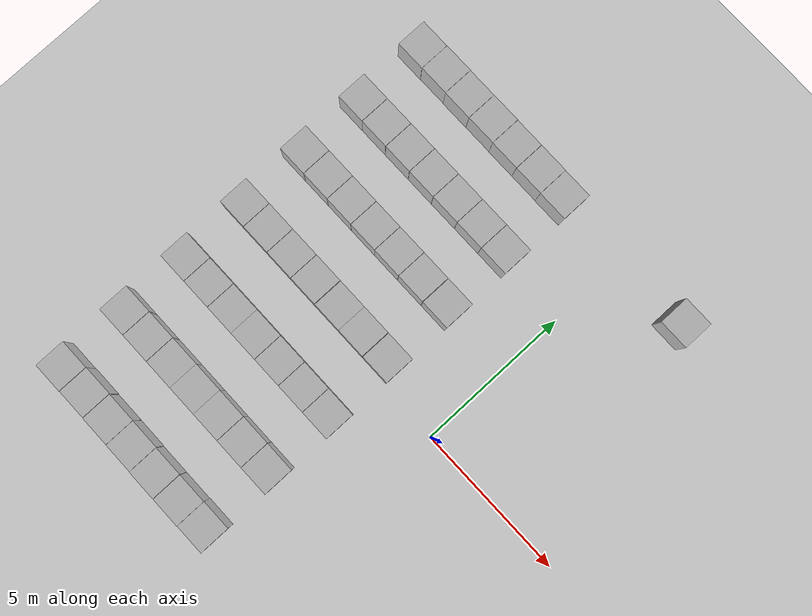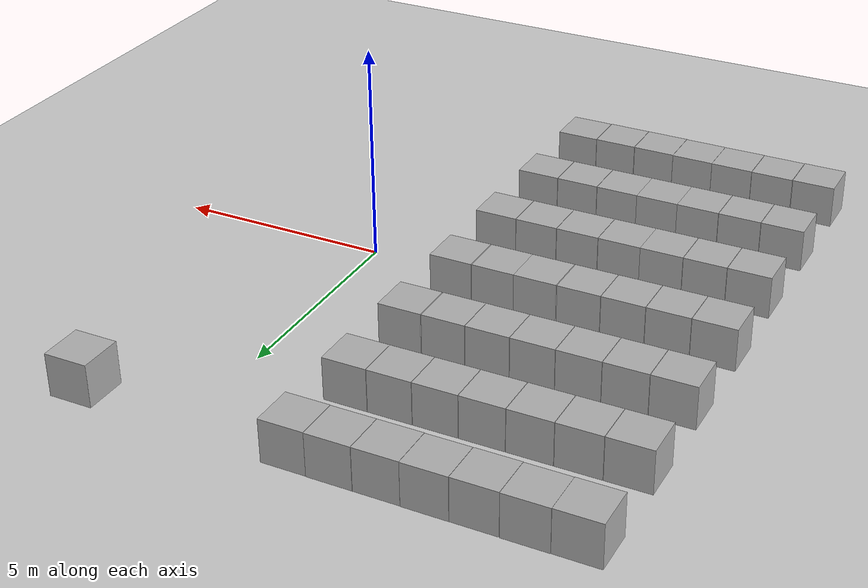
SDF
<sdf version="1.10">
 <world name="empty">
  <model name="ground_plane">
   <static>true</static>
   <link name="link">
    <collision name="collision">
     <geometry><plane><normal>0 0 1</normal><size>100 100</size></plane></geometry>
    </collision>
    <visual name="visual">
     <geometry><plane><normal>0 0 1</normal><size>100 100</size></plane></geometry>
     <material>
      <ambient>0.800000012 0.800000012 0.800000012 1</ambient>
      <diffuse>0.800000012 0.800000012 0.800000012 1</diffuse>
      <specular>0.800000012 0.800000012 0.800000012 1</specular>
     </material>
    </visual>
    <inertial>
     <mass>1</mass>
     <inertia><ixx>1</ixx><ixy>0</ixy><ixz>0</ixz><iyy>1</iyy><iyz>0</iyz><izz>1</izz></inertia>
    </inertial>
   </link>
  </model>
  <model name="box_34">
   <pose>2.4910600000000001 7.50007 0.49999999990199806 -2.5397393684422978e-21 1.8424908735395696e-21 -3.4618579833306759e-22</pose>
   <link name="box_link">
    <inertial>
     <inertia><ixx>0.16666</ixx><ixy>0</ixy><ixz>0</ixz><iyy>0.16666</iyy><iyz>0</iyz><izz>0.16666</izz></inertia>
     <mass>1</mass>
    </inertial>
    <collision name="box_collision"><geometry><box><size>1 1 1</size></box></geometry></collision>
    <visual name="box_visual">
     <geometry><box><size>1 1 1</size></box></geometry>
     <material>
      <ambient>0.300000012 0.300000012 0.300000012 1</ambient>
      <diffuse>0.699999988 0.699999988 0.699999988 1</diffuse>
      <specular>1 1 1 1</specular>
     </material>
    </visual>
   </link>
   <static>false</static>
  </model>
  <model name="box_41">
   <pose>-2.4900000000000002 -1.71 0.5 1.6937504338995532e-43 0 0</pose>
   <link name="box_link">
    <inertial>
     <inertia><ixx>0.16666</ixx><ixy>0</ixy><ixz>0</ixz><iyy>0.16666</iyy><iyz>0</iyz><izz>0.16666</izz></inertia>
     <mass>1</mass>
    </inertial>
    <collision name="box_collision"><geometry><box><size>1 1 1</size></box></geometry></collision>
    <visual name="box_visual">
     <geometry><box><size>1 1 1</size></box></geometry>
     <material>
      <ambient>0.300000012 0.300000012 0.300000012 1</ambient>
      <diffuse>0.699999988 0.699999988 0.699999988 1</diffuse>
      <specular>1 1 1 1</specular>
     </material>
    </visual>
   </link>
   <static>false</static>
  </model>
  <model name="box_42">
   <pose>-3.5 -1.71 0.5 1.6937504338995532e-43 0 0</pose>
   <link name="box_link">
    <inertial>
     <inertia><ixx>0.16666</ixx><ixy>0</ixy><ixz>0</ixz><iyy>0.16666</iyy><iyz>0</iyz><izz>0.16666</izz></inertia>
     <mass>1</mass>
    </inertial>
    <collision name="box_collision"><geometry><box><size>1 1 1</size></box></geometry></collision>
    <visual name="box_visual">
     <geometry><box><size>1 1 1</size></box></geometry>
     <material>
      <ambient>0.300000012 0.300000012 0.300000012 1</ambient>
      <diffuse>0.699999988 0.699999988 0.699999988 1</diffuse>
      <specular>1 1 1 1</specular>
     </material>
    </visual>
   </link>
   <static>false</static>
  </model>
  <model name="box_43">
   <pose>-4.5099999999999998 -1.71 0.5 1.6937504338995532e-43 0 0</pose>
   <link name="box_link">
    <inertial>
     <inertia><ixx>0.16666</ixx><ixy>0</ixy><ixz>0</ixz><iyy>0.16666</iyy><iyz>0</iyz><izz>0.16666</izz></inertia>
     <mass>1</mass>
    </inertial>
    <collision name="box_collision"><geometry><box><size>1 1 1</size></box></geometry></collision>
    <visual name="box_visual">
     <geometry><box><size>1 1 1</size></box></geometry>
     <material>
      <ambient>0.300000012 0.300000012 0.300000012 1</ambient>
      <diffuse>0.699999988 0.699999988 0.699999988 1</diffuse>
      <specular>1 1 1 1</specular>
     </material>
    </visual>
   </link>
   <static>false</static>
  </model>
  <model name="box_44">
   <pose>-5.5199999999999996 -1.71 0.5 1.6937504338995532e-43 0 0</pose>
   <link name="box_link">
    <inertial>
     <inertia><ixx>0.16666</ixx><ixy>0</ixy><ixz>0</ixz><iyy>0.16666</iyy><iyz>0</iyz><izz>0.16666</izz></inertia>
     <mass>1</mass>
    </inertial>
    <collision name="box_collision"><geometry><box><size>1 1 1</size></box></geometry></collision>
    <visual name="box_visual">
     <geometry><box><size>1 1 1</size></box></geometry>
     <material>
      <ambient>0.300000012 0.300000012 0.300000012 1</ambient>
      <diffuse>0.699999988 0.699999988 0.699999988 1</diffuse>
      <specular>1 1 1 1</specular>
     </material>
    </visual>
   </link>
   <static>false</static>
  </model>
  <model name="box_45">
   <pose>-6.5199999999999996 -1.71 0.5 1.6937504338995532e-43 0 0</pose>
   <link name="box_link">
    <inertial>
     <inertia><ixx>0.16666</ixx><ixy>0</ixy><ixz>0</ixz><iyy>0.16666</iyy><iyz>0</iyz><izz>0.16666</izz></inertia>
     <mass>1</mass>
    </inertial>
    <collision name="box_collision"><geometry><box><size>1 1 1</size></box></geometry></collision>
    <visual name="box_visual">
     <geometry><box><size>1 1 1</size></box></geometry>
     <material>
      <ambient>0.300000012 0.300000012 0.300000012 1</ambient>
      <diffuse>0.699999988 0.699999988 0.699999988 1</diffuse>
      <specular>1 1 1 1</specular>
     </material>
    </visual>
   </link>
   <static>false</static>
  </model>
  <model name="box_46">
   <pose>-7.5300000000000002 -1.71 0.5 1.6937504338995532e-43 0 0</pose>
   <link name="box_link">
    <inertial>
     <inertia><ixx>0.16666</ixx><ixy>0</ixy><ixz>0</ixz><iyy>0.16666</iyy><iyz>0</iyz><izz>0.16666</izz></inertia>
     <mass>1</mass>
    </inertial>
    <collision name="box_collision"><geometry><box><size>1 1 1</size></box></geometry></collision>
    <visual name="box_visual">
     <geometry><box><size>1 1 1</size></box></geometry>
     <material>
      <ambient>0.300000012 0.300000012 0.300000012 1</ambient>
      <diffuse>0.699999988 0.699999988 0.699999988 1</diffuse>
      <specular>1 1 1 1</specular>
     </material>
    </visual>
   </link>
   <static>false</static>
  </model>
  <model name="box_47">
   <pose>-8.5399999999999991 -1.71 0.5 1.6937504338995532e-43 0 0</pose>
   <link name="box_link">
    <inertial>
     <inertia><ixx>0.16666</ixx><ixy>0</ixy><ixz>0</ixz><iyy>0.16666</iyy><iyz>0</iyz><izz>0.16666</izz></inertia>
     <mass>1</mass>
    </inertial>
    <collision name="box_collision"><geometry><box><size>1 1 1</size></box></geometry></collision>
    <visual name="box_visual">
     <geometry><box><size>1 1 1</size></box></geometry>
     <material>
      <ambient>0.300000012 0.300000012 0.300000012 1</ambient>
      <diffuse>0.699999988 0.699999988 0.699999988 1</diffuse>
      <specular>1 1 1 1</specular>
     </material>
    </visual>
   </link>
   <static>false</static>
  </model>
  <model name="box_48">
   <pose>-2.5 0.58999999999999986 0.5 1.6937504338995532e-43 0 0</pose>
   <link name="box_link">
    <inertial>
     <inertia><ixx>0.16666</ixx><ixy>0</ixy><ixz>0</ixz><iyy>0.16666</iyy><iyz>0</iyz><izz>0.16666</izz></inertia>
     <mass>1</mass>
    </inertial>
    <collision name="box_collision"><geometry><box><size>1 1 1</size></box></geometry></collision>
    <visual name="box_visual">
     <geometry><box><size>1 1 1</size></box></geometry>
     <material>
      <ambient>0.300000012 0.300000012 0.300000012 1</ambient>
      <diffuse>0.699999988 0.699999988 0.699999988 1</diffuse>
      <specular>1 1 1 1</specular>
     </material>
    </visual>
   </link>
   <static>false</static>
  </model>
  <model name="box_49">
   <pose>-3.52 0.58999999999999986 0.5 2.2328191725413117e-44 0 0</pose>
   <link name="box_link">
    <inertial>
     <inertia><ixx>0.16666</ixx><ixy>0</ixy><ixz>0</ixz><iyy>0.16666</iyy><iyz>0</iyz><izz>0.16666</izz></inertia>
     <mass>1</mass>
    </inertial>
    <collision name="box_collision"><geometry><box><size>1 1 1</size></box></geometry></collision>
    <visual name="box_visual">
     <geometry><box><size>1 1 1</size></box></geometry>
     <material>
      <ambient>0.300000012 0.300000012 0.300000012 1</ambient>
      <diffuse>0.699999988 0.699999988 0.699999988 1</diffuse>
      <specular>1 1 1 1</specular>
     </material>
    </visual>
   </link>
   <static>false</static>
  </model>
  <model name="box_50">
   <pose>-4.5199999999999996 0.58999999999999986 0.5 1.6937504338995532e-43 0 0</pose>
   <link name="box_link">
    <inertial>
     <inertia><ixx>0.16666</ixx><ixy>0</ixy><ixz>0</ixz><iyy>0.16666</iyy><iyz>0</iyz><izz>0.16666</izz></inertia>
     <mass>1</mass>
    </inertial>
    <collision name="box_collision"><geometry><box><size>1 1 1</size></box></geometry></collision>
    <visual name="box_visual">
     <geometry><box><size>1 1 1</size></box></geometry>
     <material>
      <ambient>0.300000012 0.300000012 0.300000012 1</ambient>
      <diffuse>0.699999988 0.699999988 0.699999988 1</diffuse>
      <specular>1 1 1 1</specular>
     </material>
    </visual>
   </link>
   <static>false</static>
  </model>
  <model name="box_51">
   <pose>-5.54 0.58999999999999986 0.5 1.6937504338995532e-43 0 0</pose>
   <link name="box_link">
    <inertial>
     <inertia><ixx>0.16666</ixx><ixy>0</ixy><ixz>0</ixz><iyy>0.16666</iyy><iyz>0</iyz><izz>0.16666</izz></inertia>
     <mass>1</mass>
    </inertial>
    <collision name="box_collision"><geometry><box><size>1 1 1</size></box></geometry></collision>
    <visual name="box_visual">
     <geometry><box><size>1 1 1</size></box></geometry>
     <material>
      <ambient>0.300000012 0.300000012 0.300000012 1</ambient>
      <diffuse>0.699999988 0.699999988 0.699999988 1</diffuse>
      <specular>1 1 1 1</specular>
     </material>
    </visual>
   </link>
   <static>false</static>
  </model>
  <model name="box_52">
   <pose>-6.5499999999999998 0.58999999999999986 0.5 1.6937504338995532e-43 0 0</pose>
   <link name="box_link">
    <inertial>
     <inertia><ixx>0.16666</ixx><ixy>0</ixy><ixz>0</ixz><iyy>0.16666</iyy><iyz>0</iyz><izz>0.16666</izz></inertia>
     <mass>1</mass>
    </inertial>
    <collision name="box_collision"><geometry><box><size>1 1 1</size></box></geometry></collision>
    <visual name="box_visual">
     <geometry><box><size>1 1 1</size></box></geometry>
     <material>
      <ambient>0.300000012 0.300000012 0.300000012 1</ambient>
      <diffuse>0.699999988 0.699999988 0.699999988 1</diffuse>
      <specular>1 1 1 1</specular>
     </material>
    </visual>
   </link>
   <static>false</static>
  </model>
  <model name="box_53">
   <pose>-7.5599999999999996 0.58999999999999986 0.5 1.6937504338995532e-43 0 0</pose>
   <link name="box_link">
    <inertial>
     <inertia><ixx>0.16666</ixx><ixy>0</ixy><ixz>0</ixz><iyy>0.16666</iyy><iyz>0</iyz><izz>0.16666</izz></inertia>
     <mass>1</mass>
    </inertial>
    <collision name="box_collision"><geometry><box><size>1 1 1</size></box></geometry></collision>
    <visual name="box_visual">
     <geometry><box><size>1 1 1</size></box></geometry>
     <material>
      <ambient>0.300000012 0.300000012 0.300000012 1</ambient>
      <diffuse>0.699999988 0.699999988 0.699999988 1</diffuse>
      <specular>1 1 1 1</specular>
     </material>
    </visual>
   </link>
   <static>false</static>
  </model>
  <model name="box_54">
   <pose>-8.5700000000000003 0.59000000000000008 0.5 1.6937504338995532e-43 0 0</pose>
   <link name="box_link">
    <inertial>
     <inertia><ixx>0.16666</ixx><ixy>0</ixy><ixz>0</ixz><iyy>0.16666</iyy><iyz>0</iyz><izz>0.16666</izz></inertia>
     <mass>1</mass>
    </inertial>
    <collision name="box_collision"><geometry><box><size>1 1 1</size></box></geometry></collision>
    <visual name="box_visual">
     <geometry><box><size>1 1 1</size></box></geometry>
     <material>
      <ambient>0.300000012 0.300000012 0.300000012 1</ambient>
      <diffuse>0.699999988 0.699999988 0.699999988 1</diffuse>
      <specular>1 1 1 1</specular>
     </material>
    </visual>
   </link>
   <static>false</static>
  </model>
  <model name="box_55">
   <pose>-2.5099999999999998 -4 0.5 0 0 0</pose>
   <link name="box_link">
    <inertial>
     <inertia><ixx>0.16666</ixx><ixy>0</ixy><ixz>0</ixz><iyy>0.16666</iyy><iyz>0</iyz><izz>0.16666</izz></inertia>
     <mass>1</mass>
    </inertial>
    <collision name="box_collision"><geometry><box><size>1 1 1</size></box></geometry></collision>
    <visual name="box_visual">
     <geometry><box><size>1 1 1</size></box></geometry>
     <material>
      <ambient>0.300000012 0.300000012 0.300000012 1</ambient>
      <diffuse>0.699999988 0.699999988 0.699999988 1</diffuse>
      <specular>1 1 1 1</specular>
     </material>
    </visual>
   </link>
   <static>false</static>
  </model>
  <model name="box_56">
   <pose>-3.52 -4 0.5 -2.432589078950135e-43 0 0</pose>
   <link name="box_link">
    <inertial>
     <inertia><ixx>0.16666</ixx><ixy>0</ixy><ixz>0</ixz><iyy>0.16666</iyy><iyz>0</iyz><izz>0.16666</izz></inertia>
     <mass>1</mass>
    </inertial>
    <collision name="box_collision"><geometry><box><size>1 1 1</size></box></geometry></collision>
    <visual name="box_visual">
     <geometry><box><size>1 1 1</size></box></geometry>
     <material>
      <ambient>0.300000012 0.300000012 0.300000012 1</ambient>
      <diffuse>0.699999988 0.699999988 0.699999988 1</diffuse>
      <specular>1 1 1 1</specular>
     </material>
    </visual>
   </link>
   <static>false</static>
  </model>
  <model name="box_57">
   <pose>-4.5300000000000002 -4 0.5 1.6937504338995532e-43 0 0</pose>
   <link name="box_link">
    <inertial>
     <inertia><ixx>0.16666</ixx><ixy>0</ixy><ixz>0</ixz><iyy>0.16666</iyy><iyz>0</iyz><izz>0.16666</izz></inertia>
     <mass>1</mass>
    </inertial>
    <collision name="box_collision"><geometry><box><size>1 1 1</size></box></geometry></collision>
    <visual name="box_visual">
     <geometry><box><size>1 1 1</size></box></geometry>
     <material>
      <ambient>0.300000012 0.300000012 0.300000012 1</ambient>
      <diffuse>0.699999988 0.699999988 0.699999988 1</diffuse>
      <specular>1 1 1 1</specular>
     </material>
    </visual>
   </link>
   <static>false</static>
  </model>
  <model name="box_58">
   <pose>-5.5300000000000002 -4 0.5 1.6937504338995532e-43 0 0</pose>
   <link name="box_link">
    <inertial>
     <inertia><ixx>0.16666</ixx><ixy>0</ixy><ixz>0</ixz><iyy>0.16666</iyy><iyz>0</iyz><izz>0.16666</izz></inertia>
     <mass>1</mass>
    </inertial>
    <collision name="box_collision"><geometry><box><size>1 1 1</size></box></geometry></collision>
    <visual name="box_visual">
     <geometry><box><size>1 1 1</size></box></geometry>
     <material>
      <ambient>0.300000012 0.300000012 0.300000012 1</ambient>
      <diffuse>0.699999988 0.699999988 0.699999988 1</diffuse>
      <specular>1 1 1 1</specular>
     </material>
    </visual>
   </link>
   <static>false</static>
  </model>
  <model name="box_59">
   <pose>-6.5300000000000002 -4 0.5 5.5058610233241208e-44 0 0</pose>
   <link name="box_link">
    <inertial>
     <inertia><ixx>0.16666</ixx><ixy>0</ixy><ixz>0</ixz><iyy>0.16666</iyy><iyz>0</iyz><izz>0.16666</izz></inertia>
     <mass>1</mass>
    </inertial>
    <collision name="box_collision"><geometry><box><size>1 1 1</size></box></geometry></collision>
    <visual name="box_visual">
     <geometry><box><size>1 1 1</size></box></geometry>
     <material>
      <ambient>0.300000012 0.300000012 0.300000012 1</ambient>
      <diffuse>0.699999988 0.699999988 0.699999988 1</diffuse>
      <specular>1 1 1 1</specular>
     </material>
    </visual>
   </link>
   <static>false</static>
  </model>
  <model name="box_60">
   <pose>-7.54 -4 0.5 5.5058610233241208e-44 0 0</pose>
   <link name="box_link">
    <inertial>
     <inertia><ixx>0.16666</ixx><ixy>0</ixy><ixz>0</ixz><iyy>0.16666</iyy><iyz>0</iyz><izz>0.16666</izz></inertia>
     <mass>1</mass>
    </inertial>
    <collision name="box_collision"><geometry><box><size>1 1 1</size></box></geometry></collision>
    <visual name="box_visual">
     <geometry><box><size>1 1 1</size></box></geometry>
     <material>
      <ambient>0.300000012 0.300000012 0.300000012 1</ambient>
      <diffuse>0.699999988 0.699999988 0.699999988 1</diffuse>
      <specular>1 1 1 1</specular>
     </material>
    </visual>
   </link>
   <static>false</static>
  </model>
  <model name="box_61">
   <pose>-8.5500000000000007 -4 0.5 5.5058610233241208e-44 0 0</pose>
   <link name="box_link">
    <inertial>
     <inertia><ixx>0.16666</ixx><ixy>0</ixy><ixz>0</ixz><iyy>0.16666</iyy><iyz>0</iyz><izz>0.16666</izz></inertia>
     <mass>1</mass>
    </inertial>
    <collision name="box_collision"><geometry><box><size>1 1 1</size></box></geometry></collision>
    <visual name="box_visual">
     <geometry><box><size>1 1 1</size></box></geometry>
     <material>
      <ambient>0.300000012 0.300000012 0.300000012 1</ambient>
      <diffuse>0.699999988 0.699999988 0.699999988 1</diffuse>
      <specular>1 1 1 1</specular>
     </material>
    </visual>
   </link>
   <static>false</static>
  </model>
  <model name="box_62">
   <pose>-2.4900000000000002 2.8999999999999999 0.5 1.6937504338995532e-43 0 0</pose>
   <link name="box_link">
    <inertial>
     <inertia><ixx>0.16666</ixx><ixy>0</ixy><ixz>0</ixz><iyy>0.16666</iyy><iyz>0</iyz><izz>0.16666</izz></inertia>
     <mass>1</mass>
    </inertial>
    <collision name="box_collision"><geometry><box><size>1 1 1</size></box></geometry></collision>
    <visual name="box_visual">
     <geometry><box><size>1 1 1</size></box></geometry>
     <material>
      <ambient>0.300000012 0.300000012 0.300000012 1</ambient>
      <diffuse>0.699999988 0.699999988 0.699999988 1</diffuse>
      <specular>1 1 1 1</specular>
     </material>
    </visual>
   </link>
   <static>false</static>
  </model>
  <model name="box_63">
   <pose>-3.5099999999999998 2.8999999999999999 0.5 -4.7911072141670372e-43 0 0</pose>
   <link name="box_link">
    <inertial>
     <inertia><ixx>0.16666</ixx><ixy>0</ixy><ixz>0</ixz><iyy>0.16666</iyy><iyz>0</iyz><izz>0.16666</izz></inertia>
     <mass>1</mass>
    </inertial>
    <collision name="box_collision"><geometry><box><size>1 1 1</size></box></geometry></collision>
    <visual name="box_visual">
     <geometry><box><size>1 1 1</size></box></geometry>
     <material>
      <ambient>0.300000012 0.300000012 0.300000012 1</ambient>
      <diffuse>0.699999988 0.699999988 0.699999988 1</diffuse>
      <specular>1 1 1 1</specular>
     </material>
    </visual>
   </link>
   <static>false</static>
  </model>
  <model name="box_64">
   <pose>-4.5199999999999996 2.8999999999999999 0.5 1.6937504338995532e-43 0 0</pose>
   <link name="box_link">
    <inertial>
     <inertia><ixx>0.16666</ixx><ixy>0</ixy><ixz>0</ixz><iyy>0.16666</iyy><iyz>0</iyz><izz>0.16666</izz></inertia>
     <mass>1</mass>
    </inertial>
    <collision name="box_collision"><geometry><box><size>1 1 1</size></box></geometry></collision>
    <visual name="box_visual">
     <geometry><box><size>1 1 1</size></box></geometry>
     <material>
      <ambient>0.300000012 0.300000012 0.300000012 1</ambient>
      <diffuse>0.699999988 0.699999988 0.699999988 1</diffuse>
      <specular>1 1 1 1</specular>
     </material>
    </visual>
   </link>
   <static>false</static>
  </model>
  <model name="box_65">
   <pose>-5.5300000000000002 2.8999999999999999 0.5 1.6937504338995532e-43 0 0</pose>
   <link name="box_link">
    <inertial>
     <inertia><ixx>0.16666</ixx><ixy>0</ixy><ixz>0</ixz><iyy>0.16666</iyy><iyz>0</iyz><izz>0.16666</izz></inertia>
     <mass>1</mass>
    </inertial>
    <collision name="box_collision"><geometry><box><size>1 1 1</size></box></geometry></collision>
    <visual name="box_visual">
     <geometry><box><size>1 1 1</size></box></geometry>
     <material>
      <ambient>0.300000012 0.300000012 0.300000012 1</ambient>
      <diffuse>0.699999988 0.699999988 0.699999988 1</diffuse>
      <specular>1 1 1 1</specular>
     </material>
    </visual>
   </link>
   <static>false</static>
  </model>
  <model name="box_66">
   <pose>-6.54 2.8999999999999999 0.5 -4.7911072141670372e-43 0 0</pose>
   <link name="box_link">
    <inertial>
     <inertia><ixx>0.16666</ixx><ixy>0</ixy><ixz>0</ixz><iyy>0.16666</iyy><iyz>0</iyz><izz>0.16666</izz></inertia>
     <mass>1</mass>
    </inertial>
    <collision name="box_collision"><geometry><box><size>1 1 1</size></box></geometry></collision>
    <visual name="box_visual">
     <geometry><box><size>1 1 1</size></box></geometry>
     <material>
      <ambient>0.300000012 0.300000012 0.300000012 1</ambient>
      <diffuse>0.699999988 0.699999988 0.699999988 1</diffuse>
      <specular>1 1 1 1</specular>
     </material>
    </visual>
   </link>
   <static>false</static>
  </model>
  <model name="box_67">
   <pose>-7.5499999999999998 2.8999999999999999 0.5 -4.7911072141670372e-43 0 0</pose>
   <link name="box_link">
    <inertial>
     <inertia><ixx>0.16666</ixx><ixy>0</ixy><ixz>0</ixz><iyy>0.16666</iyy><iyz>0</iyz><izz>0.16666</izz></inertia>
     <mass>1</mass>
    </inertial>
    <collision name="box_collision"><geometry><box><size>1 1 1</size></box></geometry></collision>
    <visual name="box_visual">
     <geometry><box><size>1 1 1</size></box></geometry>
     <material>
      <ambient>0.300000012 0.300000012 0.300000012 1</ambient>
      <diffuse>0.699999988 0.699999988 0.699999988 1</diffuse>
      <specular>1 1 1 1</specular>
     </material>
    </visual>
   </link>
   <static>false</static>
  </model>
  <model name="box_68">
   <pose>-8.5600000000000005 2.8999999999999999 0.5 1.6937504338995532e-43 0 0</pose>
   <link name="box_link">
    <inertial>
     <inertia><ixx>0.16666</ixx><ixy>0</ixy><ixz>0</ixz><iyy>0.16666</iyy><iyz>0</iyz><izz>0.16666</izz></inertia>
     <mass>1</mass>
    </inertial>
    <collision name="box_collision"><geometry><box><size>1 1 1</size></box></geometry></collision>
    <visual name="box_visual">
     <geometry><box><size>1 1 1</size></box></geometry>
     <material>
      <ambient>0.300000012 0.300000012 0.300000012 1</ambient>
      <diffuse>0.699999988 0.699999988 0.699999988 1</diffuse>
      <specular>1 1 1 1</specular>
     </material>
    </visual>
   </link>
   <static>false</static>
  </model>
  <model name="box_69">
   <pose>-2.5 5.1900000000000004 0.5 1.6937504338995532e-43 0 0</pose>
   <link name="box_link">
    <inertial>
     <inertia><ixx>0.16666</ixx><ixy>0</ixy><ixz>0</ixz><iyy>0.16666</iyy><iyz>0</iyz><izz>0.16666</izz></inertia>
     <mass>1</mass>
    </inertial>
    <collision name="box_collision"><geometry><box><size>1 1 1</size></box></geometry></collision>
    <visual name="box_visual">
     <geometry><box><size>1 1 1</size></box></geometry>
     <material>
      <ambient>0.300000012 0.300000012 0.300000012 1</ambient>
      <diffuse>0.699999988 0.699999988 0.699999988 1</diffuse>
      <specular>1 1 1 1</specular>
     </material>
    </visual>
   </link>
   <static>false</static>
  </model>
  <model name="box_70">
   <pose>-3.5099999999999998 5.1900000000000546 0.5 0 0 0</pose>
   <link name="box_link">
    <inertial>
     <inertia><ixx>0.16666</ixx><ixy>0</ixy><ixz>0</ixz><iyy>0.16666</iyy><iyz>0</iyz><izz>0.16666</izz></inertia>
     <mass>1</mass>
    </inertial>
    <collision name="box_collision"><geometry><box><size>1 1 1</size></box></geometry></collision>
    <visual name="box_visual">
     <geometry><box><size>1 1 1</size></box></geometry>
     <material>
      <ambient>0.300000012 0.300000012 0.300000012 1</ambient>
      <diffuse>0.699999988 0.699999988 0.699999988 1</diffuse>
      <specular>1 1 1 1</specular>
     </material>
    </visual>
   </link>
   <static>false</static>
  </model>
  <model name="box_71">
   <pose>-4.5199999999999996 5.1900000000000004 0.5 1.6937504338995532e-43 0 0</pose>
   <link name="box_link">
    <inertial>
     <inertia><ixx>0.16666</ixx><ixy>0</ixy><ixz>0</ixz><iyy>0.16666</iyy><iyz>0</iyz><izz>0.16666</izz></inertia>
     <mass>1</mass>
    </inertial>
    <collision name="box_collision"><geometry><box><size>1 1 1</size></box></geometry></collision>
    <visual name="box_visual">
     <geometry><box><size>1 1 1</size></box></geometry>
     <material>
      <ambient>0.300000012 0.300000012 0.300000012 1</ambient>
      <diffuse>0.699999988 0.699999988 0.699999988 1</diffuse>
      <specular>1 1 1 1</specular>
     </material>
    </visual>
   </link>
   <static>false</static>
  </model>
  <model name="box_72">
   <pose>-5.5300000000000002 5.1900000000000004 0.5 1.6937504338995532e-43 0 0</pose>
   <link name="box_link">
    <inertial>
     <inertia><ixx>0.16666</ixx><ixy>0</ixy><ixz>0</ixz><iyy>0.16666</iyy><iyz>0</iyz><izz>0.16666</izz></inertia>
     <mass>1</mass>
    </inertial>
    <collision name="box_collision"><geometry><box><size>1 1 1</size></box></geometry></collision>
    <visual name="box_visual">
     <geometry><box><size>1 1 1</size></box></geometry>
     <material>
      <ambient>0.300000012 0.300000012 0.300000012 1</ambient>
      <diffuse>0.699999988 0.699999988 0.699999988 1</diffuse>
      <specular>1 1 1 1</specular>
     </material>
    </visual>
   </link>
   <static>false</static>
  </model>
  <model name="box_73">
   <pose>-6.54 5.1900000000000004 0.5 1.6937504338995532e-43 0 0</pose>
   <link name="box_link">
    <inertial>
     <inertia><ixx>0.16666</ixx><ixy>0</ixy><ixz>0</ixz><iyy>0.16666</iyy><iyz>0</iyz><izz>0.16666</izz></inertia>
     <mass>1</mass>
    </inertial>
    <collision name="box_collision"><geometry><box><size>1 1 1</size></box></geometry></collision>
    <visual name="box_visual">
     <geometry><box><size>1 1 1</size></box></geometry>
     <material>
      <ambient>0.300000012 0.300000012 0.300000012 1</ambient>
      <diffuse>0.699999988 0.699999988 0.699999988 1</diffuse>
      <specular>1 1 1 1</specular>
     </material>
    </visual>
   </link>
   <static>false</static>
  </model>
  <model name="box_74">
   <pose>-7.5499999999999998 5.1900000000000004 0.5 -4.0097955978552325e-44 0 0</pose>
   <link name="box_link">
    <inertial>
     <inertia><ixx>0.16666</ixx><ixy>0</ixy><ixz>0</ixz><iyy>0.16666</iyy><iyz>0</iyz><izz>0.16666</izz></inertia>
     <mass>1</mass>
    </inertial>
    <collision name="box_collision"><geometry><box><size>1 1 1</size></box></geometry></collision>
    <visual name="box_visual">
     <geometry><box><size>1 1 1</size></box></geometry>
     <material>
      <ambient>0.300000012 0.300000012 0.300000012 1</ambient>
      <diffuse>0.699999988 0.699999988 0.699999988 1</diffuse>
      <specular>1 1 1 1</specular>
     </material>
    </visual>
   </link>
   <static>false</static>
  </model>
  <model name="box_75">
   <pose>-8.5600000000000005 5.1900000000000004 0.5 1.6937504338995532e-43 0 0</pose>
   <link name="box_link">
    <inertial>
     <inertia><ixx>0.16666</ixx><ixy>0</ixy><ixz>0</ixz><iyy>0.16666</iyy><iyz>0</iyz><izz>0.16666</izz></inertia>
     <mass>1</mass>
    </inertial>
    <collision name="box_collision"><geometry><box><size>1 1 1</size></box></geometry></collision>
    <visual name="box_visual">
     <geometry><box><size>1 1 1</size></box></geometry>
     <material>
      <ambient>0.300000012 0.300000012 0.300000012 1</ambient>
      <diffuse>0.699999988 0.699999988 0.699999988 1</diffuse>
      <specular>1 1 1 1</specular>
     </material>
    </visual>
   </link>
   <static>false</static>
  </model>
  <model name="box_76">
   <pose>-2.5098099999999999 7.5303300000000002 0.49999999990199806 1.6258879611171386e-25 2.8834196501176479e-21 -1.4428456090324048e-22</pose>
   <link name="box_link">
    <inertial>
     <inertia><ixx>0.16666</ixx><ixy>0</ixy><ixz>0</ixz><iyy>0.16666</iyy><iyz>0</iyz><izz>0.16666</izz></inertia>
     <mass>1</mass>
    </inertial>
    <collision name="box_collision"><geometry><box><size>1 1 1</size></box></geometry></collision>
    <visual name="box_visual">
     <geometry><box><size>1 1 1</size></box></geometry>
     <material>
      <ambient>0.300000012 0.300000012 0.300000012 1</ambient>
      <diffuse>0.699999988 0.699999988 0.699999988 1</diffuse>
      <specular>1 1 1 1</specular>
     </material>
    </visual>
   </link>
   <static>false</static>
  </model>
  <model name="box_77">
   <pose>-3.5156100000000001 7.5385999999999997 0.49999999990199806 -4.0118333756027455e-21 2.8290987280046588e-21 -5.526021975323292e-22</pose>
   <link name="box_link">
    <inertial>
     <inertia><ixx>0.16666</ixx><ixy>0</ixy><ixz>0</ixz><iyy>0.16666</iyy><iyz>0</iyz><izz>0.16666</izz></inertia>
     <mass>1</mass>
    </inertial>
    <collision name="box_collision"><geometry><box><size>1 1 1</size></box></geometry></collision>
    <visual name="box_visual">
     <geometry><box><size>1 1 1</size></box></geometry>
     <material>
      <ambient>0.300000012 0.300000012 0.300000012 1</ambient>
      <diffuse>0.699999988 0.699999988 0.699999988 1</diffuse>
      <specular>1 1 1 1</specular>
     </material>
    </visual>
   </link>
   <static>false</static>
  </model>
  <model name="box_78">
   <pose>-4.5248699999999999 7.5397100000000004 0.49999999990199806 1.6258879611171386e-25 2.8834196501176479e-21 -1.4428456090324048e-22</pose>
   <link name="box_link">
    <inertial>
     <inertia><ixx>0.16666</ixx><ixy>0</ixy><ixz>0</ixz><iyy>0.16666</iyy><iyz>0</iyz><izz>0.16666</izz></inertia>
     <mass>1</mass>
    </inertial>
    <collision name="box_collision"><geometry><box><size>1 1 1</size></box></geometry></collision>
    <visual name="box_visual">
     <geometry><box><size>1 1 1</size></box></geometry>
     <material>
      <ambient>0.300000012 0.300000012 0.300000012 1</ambient>
      <diffuse>0.699999988 0.699999988 0.699999988 1</diffuse>
      <specular>1 1 1 1</specular>
     </material>
    </visual>
   </link>
   <static>false</static>
  </model>
  <model name="box_79">
   <pose>-5.5309699999999999 7.5473499999999998 0.49999999990199806 6.2287739151293738e-22 9.3279666454713669e-22 -3.6315533669320137e-22</pose>
   <link name="box_link">
    <inertial>
     <inertia><ixx>0.16666</ixx><ixy>0</ixy><ixz>0</ixz><iyy>0.16666</iyy><iyz>0</iyz><izz>0.16666</izz></inertia>
     <mass>1</mass>
    </inertial>
    <collision name="box_collision"><geometry><box><size>1 1 1</size></box></geometry></collision>
    <visual name="box_visual">
     <geometry><box><size>1 1 1</size></box></geometry>
     <material>
      <ambient>0.300000012 0.300000012 0.300000012 1</ambient>
      <diffuse>0.699999988 0.699999988 0.699999988 1</diffuse>
      <specular>1 1 1 1</specular>
     </material>
    </visual>
   </link>
   <static>false</static>
  </model>
  <model name="box_80">
   <pose>-6.5377299999999998 7.5444399999999998 0.49999999990199806 6.2287739151293738e-22 9.3279666454713669e-22 -3.6315533669320137e-22</pose>
   <link name="box_link">
    <inertial>
     <inertia><ixx>0.16666</ixx><ixy>0</ixy><ixz>0</ixz><iyy>0.16666</iyy><iyz>0</iyz><izz>0.16666</izz></inertia>
     <mass>1</mass>
    </inertial>
    <collision name="box_collision"><geometry><box><size>1 1 1</size></box></geometry></collision>
    <visual name="box_visual">
     <geometry><box><size>1 1 1</size></box></geometry>
     <material>
      <ambient>0.300000012 0.300000012 0.300000012 1</ambient>
      <diffuse>0.699999988 0.699999988 0.699999988 1</diffuse>
      <specular>1 1 1 1</specular>
     </material>
    </visual>
   </link>
   <static>false</static>
  </model>
  <model name="box_81">
   <pose>-7.5443600000000002 7.5526799999999996 0.49999999990199806 0 0 0</pose>
   <link name="box_link">
    <inertial>
     <inertia><ixx>0.16666</ixx><ixy>0</ixy><ixz>0</ixz><iyy>0.16666</iyy><iyz>0</iyz><izz>0.16666</izz></inertia>
     <mass>1</mass>
    </inertial>
    <collision name="box_collision"><geometry><box><size>1 1 1</size></box></geometry></collision>
    <visual name="box_visual">
     <geometry><box><size>1 1 1</size></box></geometry>
     <material>
      <ambient>0.300000012 0.300000012 0.300000012 1</ambient>
      <diffuse>0.699999988 0.699999988 0.699999988 1</diffuse>
      <specular>1 1 1 1</specular>
     </material>
    </visual>
   </link>
   <static>false</static>
  </model>
  <model name="box_82">
   <pose>-8.5466200000000008 7.54704 0.49999999990199806 1.6258879611171386e-25 2.8834196501176479e-21 -1.4428456090324048e-22</pose>
   <link name="box_link">
    <inertial>
     <inertia><ixx>0.16666</ixx><ixy>0</ixy><ixz>0</ixz><iyy>0.16666</iyy><iyz>0</iyz><izz>0.16666</izz></inertia>
     <mass>1</mass>
    </inertial>
    <collision name="box_collision"><geometry><box><size>1 1 1</size></box></geometry></collision>
    <visual name="box_visual">
     <geometry><box><size>1 1 1</size></box></geometry>
     <material>
      <ambient>0.300000012 0.300000012 0.300000012 1</ambient>
      <diffuse>0.699999988 0.699999988 0.699999988 1</diffuse>
      <specular>1 1 1 1</specular>
     </material>
    </visual>
   </link>
   <static>false</static>
  </model>
  <model name="box_89">
   <pose>-2.5144379138946533 -6.369999885559082 0.5 0 0 0</pose>
   <link name="box_link">
    <inertial>
     <inertia><ixx>0.16666</ixx><ixy>0</ixy><ixz>0</ixz><iyy>0.16666</iyy><iyz>0</iyz><izz>0.16666</izz></inertia>
     <mass>1</mass>
    </inertial>
    <collision name="box_collision"><geometry><box><size>1 1 1</size></box></geometry></collision>
    <visual name="box_visual">
     <geometry><box><size>1 1 1</size></box></geometry>
     <material>
      <ambient>0.300000012 0.300000012 0.300000012 1</ambient>
      <diffuse>0.699999988 0.699999988 0.699999988 1</diffuse>
      <specular>1 1 1 1</specular>
     </material>
    </visual>
   </link>
   <static>false</static>
  </model>
  <model name="box_90">
   <pose>-3.5183687210083008 -6.3792500495910645 0.5 0 0 0</pose>
   <link name="box_link">
    <inertial>
     <inertia><ixx>0.16666</ixx><ixy>0</ixy><ixz>0</ixz><iyy>0.16666</iyy><iyz>0</iyz><izz>0.16666</izz></inertia>
     <mass>1</mass>
    </inertial>
    <collision name="box_collision"><geometry><box><size>1 1 1</size></box></geometry></collision>
    <visual name="box_visual">
     <geometry><box><size>1 1 1</size></box></geometry>
     <material>
      <ambient>0.300000012 0.300000012 0.300000012 1</ambient>
      <diffuse>0.699999988 0.699999988 0.699999988 1</diffuse>
      <specular>1 1 1 1</specular>
     </material>
    </visual>
   </link>
   <static>false</static>
  </model>
  <model name="box_91">
   <pose>-4.5299082795834318 -6.379326466454164 0.5 0 0 0</pose>
   <link name="box_link">
    <inertial>
     <inertia><ixx>0.16666</ixx><ixy>0</ixy><ixz>0</ixz><iyy>0.16666</iyy><iyz>0</iyz><izz>0.16666</izz></inertia>
     <mass>1</mass>
    </inertial>
    <collision name="box_collision"><geometry><box><size>1 1 1</size></box></geometry></collision>
    <visual name="box_visual">
     <geometry><box><size>1 1 1</size></box></geometry>
     <material>
      <ambient>0.300000012 0.300000012 0.300000012 1</ambient>
      <diffuse>0.699999988 0.699999988 0.699999988 1</diffuse>
      <specular>1 1 1 1</specular>
     </material>
    </visual>
   </link>
   <static>false</static>
  </model>
  <model name="box_92">
   <pose>-5.5359385793179641 -6.3669785111670549 0.5 0 0 0</pose>
   <link name="box_link">
    <inertial>
     <inertia><ixx>0.16666</ixx><ixy>0</ixy><ixz>0</ixz><iyy>0.16666</iyy><iyz>0</iyz><izz>0.16666</izz></inertia>
     <mass>1</mass>
    </inertial>
    <collision name="box_collision"><geometry><box><size>1 1 1</size></box></geometry></collision>
    <visual name="box_visual">
     <geometry><box><size>1 1 1</size></box></geometry>
     <material>
      <ambient>0.300000012 0.300000012 0.300000012 1</ambient>
      <diffuse>0.699999988 0.699999988 0.699999988 1</diffuse>
      <specular>1 1 1 1</specular>
     </material>
    </visual>
   </link>
   <static>false</static>
  </model>
  <model name="box_93">
   <pose>-6.539653901929011 -6.3618755964975824 0.5 0 0 0</pose>
   <link name="box_link">
    <inertial>
     <inertia><ixx>0.16666</ixx><ixy>0</ixy><ixz>0</ixz><iyy>0.16666</iyy><iyz>0</iyz><izz>0.16666</izz></inertia>
     <mass>1</mass>
    </inertial>
    <collision name="box_collision"><geometry><box><size>1 1 1</size></box></geometry></collision>
    <visual name="box_visual">
     <geometry><box><size>1 1 1</size></box></geometry>
     <material>
      <ambient>0.300000012 0.300000012 0.300000012 1</ambient>
      <diffuse>0.699999988 0.699999988 0.699999988 1</diffuse>
      <specular>1 1 1 1</specular>
     </material>
    </visual>
   </link>
   <static>false</static>
  </model>
  <model name="box_94">
   <pose>-7.5502911563618778 -6.353097983934072 0.5 0 0 0</pose>
   <link name="box_link">
    <inertial>
     <inertia><ixx>0.16666</ixx><ixy>0</ixy><ixz>0</ixz><iyy>0.16666</iyy><iyz>0</iyz><izz>0.16666</izz></inertia>
     <mass>1</mass>
    </inertial>
    <collision name="box_collision"><geometry><box><size>1 1 1</size></box></geometry></collision>
    <visual name="box_visual">
     <geometry><box><size>1 1 1</size></box></geometry>
     <material>
      <ambient>0.300000012 0.300000012 0.300000012 1</ambient>
      <diffuse>0.699999988 0.699999988 0.699999988 1</diffuse>
      <specular>1 1 1 1</specular>
     </material>
    </visual>
   </link>
   <static>false</static>
  </model>
  <model name="box_95">
   <pose>-8.5625616186054554 -6.3621841719164962 0.5 0 0 0</pose>
   <link name="box_link">
    <inertial>
     <inertia><ixx>0.16666</ixx><ixy>0</ixy><ixz>0</ixz><iyy>0.16666</iyy><iyz>0</iyz><izz>0.16666</izz></inertia>
     <mass>1</mass>
    </inertial>
    <collision name="box_collision"><geometry><box><size>1 1 1</size></box></geometry></collision>
    <visual name="box_visual">
     <geometry><box><size>1 1 1</size></box></geometry>
     <material>
      <ambient>0.300000012 0.300000012 0.300000012 1</ambient>
      <diffuse>0.699999988 0.699999988 0.699999988 1</diffuse>
      <specular>1 1 1 1</specular>
     </material>
    </visual>
   </link>
   <static>false</static>
  </model>
 </world>
</sdf>
